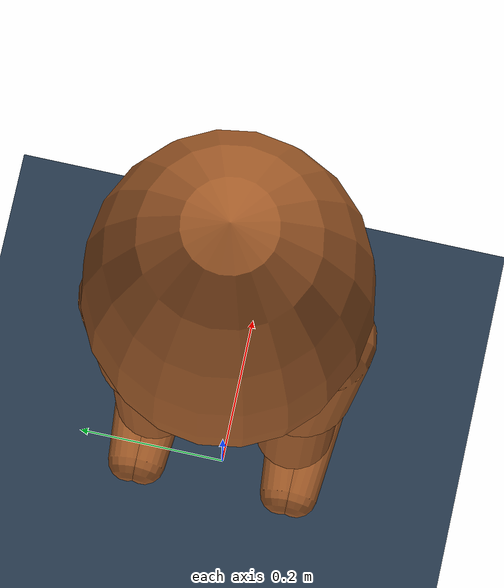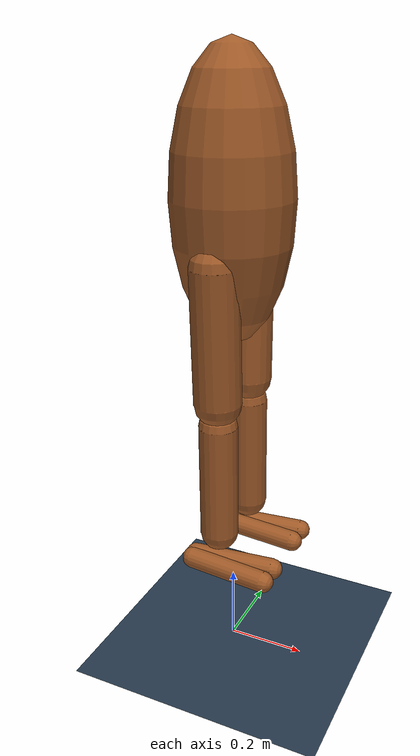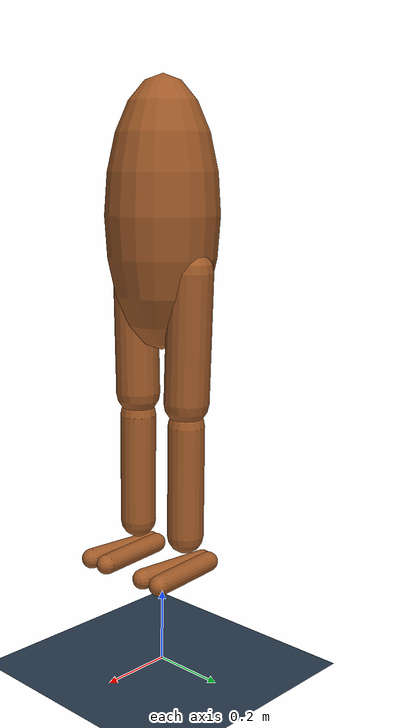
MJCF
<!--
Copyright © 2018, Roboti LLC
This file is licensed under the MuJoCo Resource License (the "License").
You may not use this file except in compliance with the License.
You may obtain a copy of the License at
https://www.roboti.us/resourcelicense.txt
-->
<mujoco model="Creature">

    <compiler inertiafromgeom="true" angle="degree"/>

    <default>
        <joint limited="true" damping="1" armature="0"/>
        <geom condim="1" material="matgeom"/>
        <motor ctrlrange="-.4 .4" ctrllimited="true"/>
    </default>

    <option timestep="0.005" iterations="10" tolerance="1e-10" solver="Newton" jacobian="dense" cone="elliptic"/>

    <size nconmax="50" njmax="200" nstack="10000"/>

    <visual>
        <map force="0.1" zfar="30"/>
        <rgba haze="0.15 0.25 0.35 1"/>
        <quality shadowsize="2048"/>
        <global offwidth="800" offheight="800"/>
    </visual>

    <asset>
        <texture type="skybox" builtin="gradient" rgb1="0.3 0.5 0.7" rgb2="0 0 0" width="512" height="512"/>

        <texture name="texplane" type="2d" builtin="checker" rgb1=".2 .3 .4" rgb2=".1 0.15 0.2" width="512" height="512" mark="cross" markrgb=".8 .8 .8"/>

        <texture name="texgeom" type="cube" builtin="flat" mark="cross" width="127" height="1278"
            rgb1="0.8 0.6 0.4" rgb2="0.8 0.6 0.4" markrgb="1 1 1" random="0.01"/>

        <material name="matplane" reflectance="0.3" texture="texplane" texrepeat="1 1" texuniform="true"/>

        <material name="matgeom" texture="texgeom" texuniform="true" rgba="0.8 0.6 .4 1"/>
    </asset>

    <worldbody>
        <geom name="floor" pos="0 0 0" size="0 0 .25" type="plane" material="matplane" condim="3"/>

        <light directional="false" diffuse=".2 .2 .2" specular="0 0 0" pos="0 0 5" dir="0 0 -1" castshadow="false"/>
        <light mode="targetbodycom" target="torso" directional="false" diffuse=".8 .8 .8" specular="0.3 0.3 0.3" pos="0 0 4.0" dir="0 0 -1"/>

        <body name="torso" pos="0 0 1.4">
            <freejoint name="root"/>

                <body name="pelvis" pos="0 0 -0.165" quat="1.000 0 -0.002 0" >
                    <geom name="butt" type="ellipsoid" size="0.15 0.15 0.35" />
                    <body name="right_thigh" pos="0.0 -0.1 -0.14" >
                        <joint name="right_hip_x" type="hinge" pos="0 0 0" axis="1 0 0" range="-25 5"   damping="5" stiffness="10" armature="0.01" />
                        <joint name="right_hip_z" type="hinge" pos="0 0 0" axis="0 0 1" range="-60 35"  damping="5" stiffness="10" armature="0.01" />
                        <joint name="right_hip_y" type="hinge" pos="0 0 0" axis="0 1 0" range="-120 20" damping="5" stiffness="20" armature="0.01" />
                        <geom name="right_thigh1" type="capsule" fromto="0 0 0 0 0.01 -.34"  size="0.06" />
                        <body name="right_shin" pos="0 0.01 -0.403" >
                            <joint name="right_knee" type="hinge" pos="0 0 .02" axis="0 -1 0" range="-160 -2" stiffness="1" armature="0.0060" />
                            <geom name="right_shin1" type="capsule" fromto="0 0 0 0 0 -.3"   size="0.049" />
                            <body name="right_foot" pos="0 0 -.39" >
                                <joint name="right_ankle_y" type="hinge" pos="0 0 0.08" axis="0 1 0"   range="-50 50" stiffness="4" armature="0.0008" />
                                <joint name="right_ankle_x" type="hinge" pos="0 0 0.04" axis="1 0 0.5" range="-50 50" stiffness="1"  armature="0.0006" />
                                <geom name="right_foot_cap1" type="capsule" fromto="-.07 -0.02 0 0.14 -0.04 0"  size="0.027" />
                                <geom name="right_foot_cap2" type="capsule" fromto="-.07 0 0 0.14  0.02 0"  size="0.027" />
                            </body>
                        </body>
                    </body>
                    <body name="left_thigh" pos="0.0 0.1 -0.14" >
                        <joint name="left_hip_x" type="hinge" pos="0 0 0" axis="-1 0 0" range="-25 5"  damping="5" stiffness="10" armature="0.01" />
                        <joint name="left_hip_z" type="hinge" pos="0 0 0" axis="0 0 -1" range="-60 35" damping="5" stiffness="10" armature="0.01" />
                        <joint name="left_hip_y" type="hinge" pos="0 0 0" axis="0 1 0" range="-120 20" damping="5" stiffness="20" armature="0.01" />
                        <geom name="left_thigh1" type="capsule" fromto="0 0 0 0 -0.01 -.34"  size="0.06" />
                        <body name="left_shin" pos="0 -0.01 -0.403" >
                            <joint name="left_knee" type="hinge" pos="0 0 .02" axis="0 -1 0" range="-160 -2" stiffness="1" armature="0.0060" />
                            <geom name="left_shin1" type="capsule" fromto="0 0 0 0 0 -.3"   size="0.049" />
                            <body name="left_foot" pos="0 0 -.39" >
                                <joint name="left_ankle_y" type="hinge" pos="0 0 0.08" axis="0 1 0"   range="-50 50"  stiffness="4" armature="0.0008" />
                                <joint name="left_ankle_x" type="hinge" pos="0 0 0.04" axis="1 0 0.5" range="-50 50"  stiffness="1"  armature="0.0006" />
                                <geom name="left_foot_cap1" type="capsule" fromto="-.07 0.02 0 0.14 0.04 0"  size="0.027" />
                                <geom name="left_foot_cap2" type="capsule" fromto="-.07 0 0 0.14  -0.02 0"  size="0.027" />
                            </body>
                        </body>
                    </body>
                </body>

        </body>
    </worldbody>

    <actuator>
        <motor name="right_hip_x"     gear="200" joint="right_hip_x" />
        <motor name="right_hip_z"     gear="200" joint="right_hip_z" />
        <motor name="right_hip_y"     gear="600" joint="right_hip_y" />
        <motor name="right_knee"      gear="400" joint="right_knee" />
        <motor name="right_ankle_y"   gear="100" joint="right_ankle_y" />
        <motor name="right_ankle_x"   gear="100" joint="right_ankle_x" />
        <motor name="left_hip_x"      gear="200" joint="left_hip_x" />
        <motor name="left_hip_z"      gear="200" joint="left_hip_z" />
        <motor name="left_hip_y"      gear="600" joint="left_hip_y" />
        <motor name="left_knee"       gear="400" joint="left_knee" />
        <motor name="left_ankle_y"    gear="100" joint="left_ankle_y" />
        <motor name="left_ankle_x"    gear="100" joint="left_ankle_x" />
    </actuator>

</mujoco>
